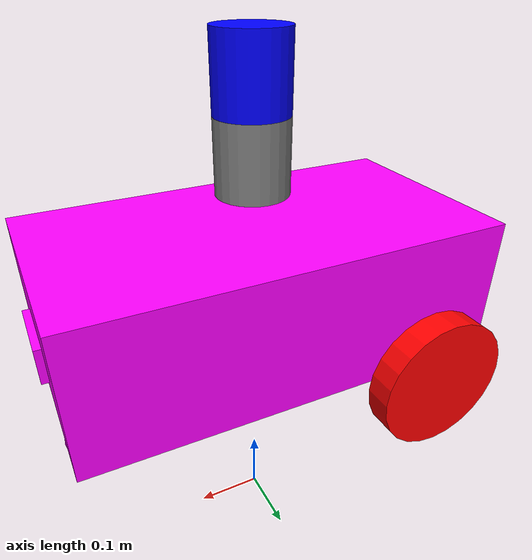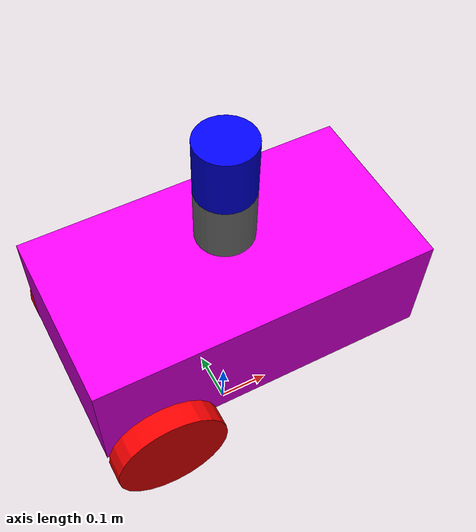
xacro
<?xml version="1.0"?>

<robot name="car" xmlns:xacro="https:/www.ros.org/wiki/xacro">

  <xacro:include filename="mobile_base.xacro" />
  <xacro:include filename="common_properties.xacro" />
  <xacro:include filename="mabile_base_gazebo.xacro" />
  <xacro:include filename="camera.xacro" />
  <xacro:include filename="lidar.xacro" />

</robot>

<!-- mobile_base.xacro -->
<robot xmlns:xacro="https:/www.ros.org/wiki/xacro">
  <xacro:property name="base_length" value="0.6"/>
  <xacro:property name="base_width" value="0.32"/>
  <xacro:property name="base_height" value="0.2"/>
  <xacro:property name="wheel_radius" value="0.1"/>
  <xacro:property name="wheel_length" value="0.04"/>

  <link name="base_link">
    <visual>
      <origin xyz="0 0 0.21" rpy="0 0 0"/>
      <geometry>
        <box size="${base_length} ${base_width} ${base_height}"/>
      </geometry>
      <material name="blue">
        <color rgba="1 0 1 1"/>
      </material>
    </visual>
    <collision>
      <origin xyz="0 0 0.21" rpy="0 0 0"/>
      <geometry>
        <box size="${base_length} ${base_width} ${base_height}"/>
      </geometry>
    </collision>
    <inertial>
      <mass value="1.0"/>
      <origin xyz="0 0 0.21" rpy="0 0 0"/>
      <inertia ixx="0.1" ixy="0.0" ixz="0.0" iyy="0.1" iyz="0.0" izz="0.1"/>
    </inertial>

  </link>

    <link name="caster_wheel">
    <visual>
      <origin xyz="0 0 0" rpy="0 0 0"/>
      <geometry>
        <sphere radius="0.05"/>
      </geometry>
      <material name="grey">
        <color rgba="1 0 1 1"/>
      </material>
    </visual>
    <collision>
      <origin xyz="0 0 0" rpy="0 0 0"/>
      <geometry>
        <sphere radius="0.05"/>
      </geometry>
    </collision>
    <inertial>
      <mass value="1.0"/>
      <origin xyz="0 0 0" rpy="0 0 0"/>
      <inertia ixx="0.1" ixy="0.0" ixz="0.0" iyy="0.1" iyz="0.0" izz="0.1"/>
    </inertial>

  </link>

  <link name="base_footprint" />

  <xacro:macro name="wheel_link" params="prefix" >
    <link name="wheel_${prefix}">
      <visual>
        <origin xyz="0 0 0" rpy="${pi/2} 0 0"/>
        <geometry>
          <cylinder radius="${wheel_radius}" length="${wheel_length}"/>
        </geometry>
        <material name="red">
          <color rgba="1 0 0 1"/>
        </material>
      </visual>
      <collision>
        <origin xyz="0 0 0" rpy="${pi/2} 0 0"/>
        <geometry>
          <cylinder radius="${wheel_radius}" length="${wheel_length}"/>
        </geometry>
      </collision>
      <inertial>
        <mass value="0.1"/>
        <origin xyz="0 0 0" rpy="1.57 0 0"/>
        <inertia ixx="0.01" ixy="0.0" ixz="0.0" iyy="0.01" iyz="0.0" izz="0.01"/>
      </inertial>
    </link>
  </xacro:macro>
  <xacro:wheel_link prefix="rear_left" />
  <xacro:wheel_link prefix="rear_right" />

  <joint name="joint_rear_left" type="continuous">
    <parent link="base_link"/>
    <child link="wheel_rear_left"/>
    <origin xyz="${-base_length/3} ${(base_width/2)+(0.025)} ${wheel_radius}" rpy="0 0 0"/>
    <axis xyz="0 1 0"/>
  </joint>

  <joint name="joint_rear_right" type="continuous">
    <parent link="base_link"/>
    <child link="wheel_rear_right"/>
    <origin xyz="${-base_length/3} ${-((base_width/2)+(0.025))} ${wheel_radius}" rpy="0 0 0"/>
    <axis xyz="0 1 0"/>
  </joint>

  <joint name="joint_base_caster" type="fixed">
    <parent link="base_link"/>
    <child link="caster_wheel"/>
    <origin xyz="0.25 0 0.025" rpy="0 0 0"/>
    <axis xyz="0 1 0"/>
  </joint>

  <joint name="base_joint" type="fixed">
    <parent link="base_footprint"/>
    <child link="base_link" />
    <origin xyz="0 0 ${2*wheel_radius}" rpy="0 0 0" />
  </joint>

</robot>

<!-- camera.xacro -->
<robot xmlns:xacro="https:/www.ros.org/wiki/xacro">
    <link name="camera_link">
        <visual>
            <geometry>
                <box size="0.01 0.1 0.05"/>
            </geometry>
            <material name="grey"/>
        </visual>
        <collision>
            <geometry>
                <box size="0.01 0.1 0.05"/>
            </geometry>
        </collision>
        <inertial>
            <mass value="1.0"/>
            <origin xyz="0 0 0" rpy="0 0 0"/>
        <inertia ixx="0.1" ixy="0.0" ixz="0.0" iyy="0.1" iyz="0.0" izz="0.1"/>
        </inertial>
    </link>

    <joint name="base_camera_joint" type="fixed">
        <parent link="base_link" />
        <child link="camera_link" />
        <origin xyz="0.305 0 0.2" rpy="0 0 0" />
    </joint>

</robot>

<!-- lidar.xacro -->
<robot xmlns:xacro="https:/www.ros.org/wiki/xacro">
 <!-- Lidar Base -->
  <link name="lidar_robot_lidar_base_link">
    <visual>
      <geometry>
        <cylinder radius="0.05" length="0.1"/>
      </geometry>
      <material name="grey">
        <color rgba="0.5 0.5 0.5 1.0"/>
      </material>
    </visual>
    <collision>
      <geometry>
        <cylinder radius="0.05" length="0.1"/>
      </geometry>
    </collision>
    <inertial>
      <mass value="0.1"/>
      <inertia ixx="0.0001" ixy="0.0" ixz="0.0" iyy="0.0001" iyz="0.0" izz="0.0001"/>
      <origin xyz="0 0 0"/>
    </inertial>
  </link>

  <!-- Lidar Top -->
  <link name="lidar_robot_lidar_top_link">
    <visual>
      <geometry>
        <cylinder radius="0.05" length="0.1"/>
      </geometry>
      <material name="blue">
        <color rgba="0.0 0.0 1.0 1.0"/>
      </material>
    </visual>
    <collision>
      <geometry>
        <cylinder radius="0.05" length="0.1"/>
      </geometry>
    </collision>
    <inertial>
      <mass value="0.1"/>
      <inertia ixx="0.0001" ixy="0.0" ixz="0.0" iyy="0.0001" iyz="0.0" izz="0.0001"/>
      <origin xyz="0 0 0"/>
    </inertial>
  </link>

  <joint name="base_lidar_joint" type="fixed">
    <parent link="base_link" />
    <child link="lidar_robot_lidar_base_link" />
    <origin xyz="0 0 0.4" rpy="0 0 0" />
  </joint>

  <joint name="lidar_robot_lidar_joint" type="fixed">
    <parent link="lidar_robot_lidar_base_link"/>
    <child link="lidar_robot_lidar_top_link"/>
    <origin xyz="0 0 0.1" rpy="0 0 0"/>
  </joint>

</robot>
